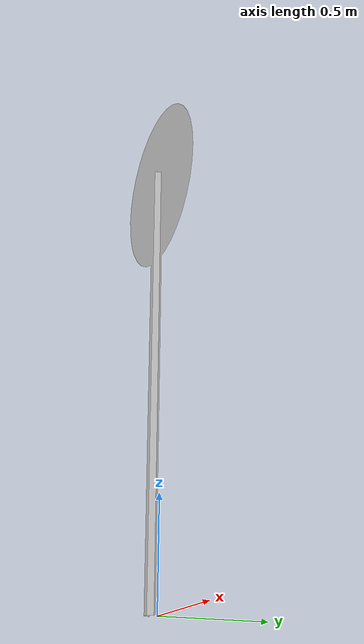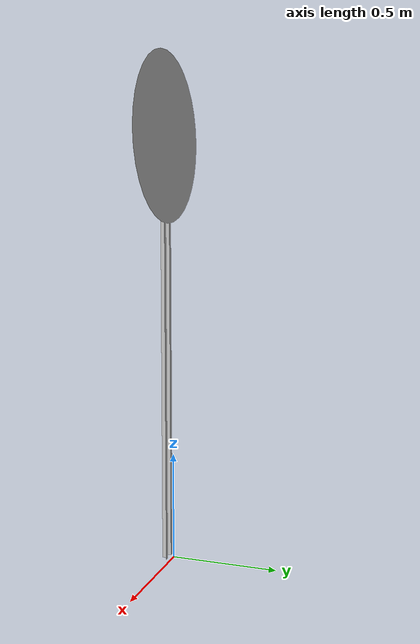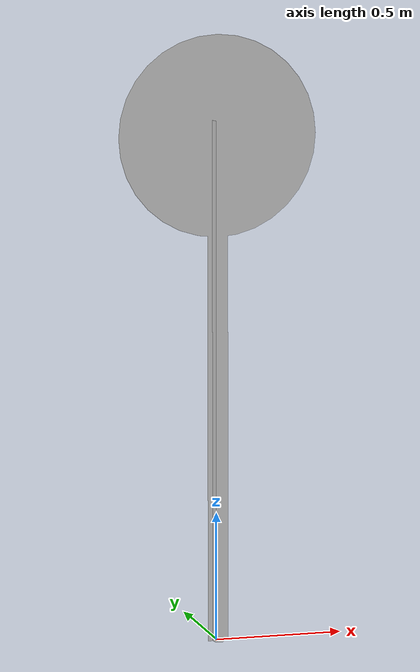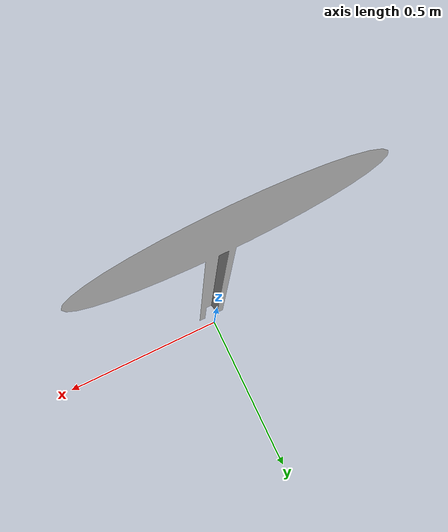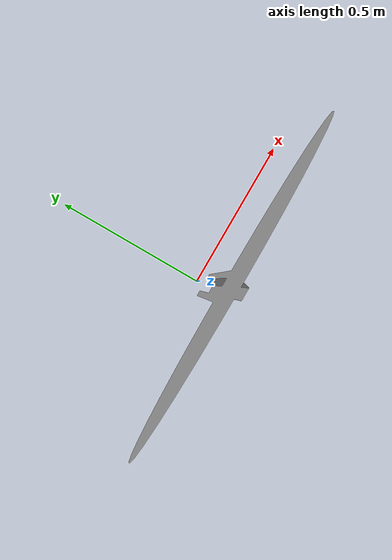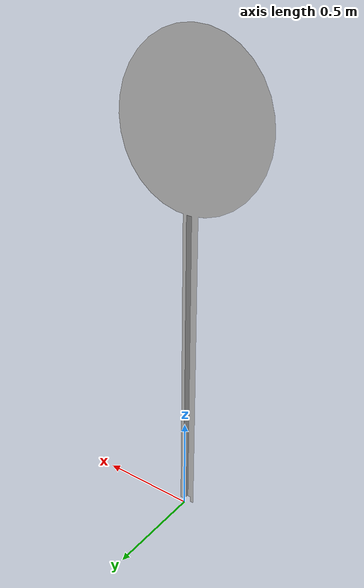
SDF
<?xml version="1.0" ?>
<sdf version="1.5">
  <model name="Pedestrian Crossing">
    <static>true</static>
    <link name="link">
      <collision name="collision">
        <geometry>
          <mesh>
            <scale>10 10 10</scale>
            <uri>model://models/Signs/Pedestrian_Crossing_sign/meshes/pedestrian_crossing_sign.dae</uri>
          </mesh>
        </geometry>
      </collision>
      <visual name="visual">
        <geometry>
          <mesh>
            <scale>10 10 10</scale>
            <uri>model://models/Signs/Pedestrian_Crossing_sign/meshes/pedestrian_crossing_sign.dae</uri>
          </mesh>
        </geometry>
      </visual>
    </link>
  </model>
</sdf>
